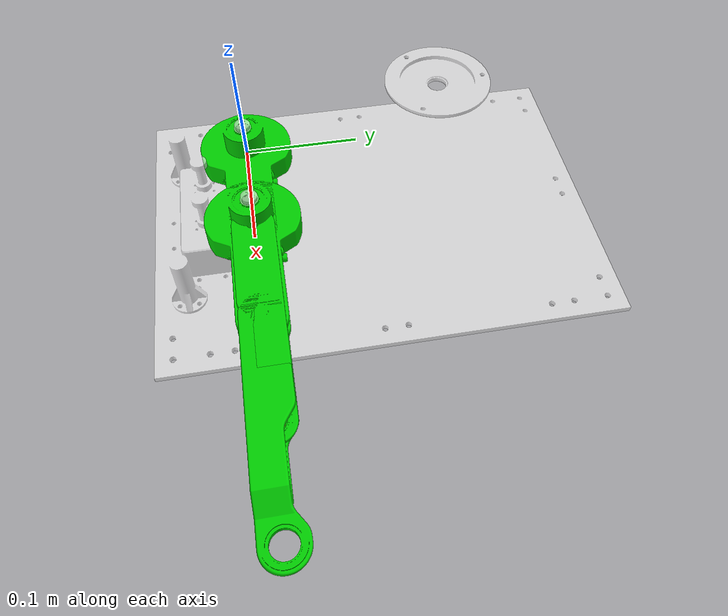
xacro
<?xml version="1.0"?>

<robot xmlns:xacro="http://www.ros.org/wiki/xacro" name="pantograph">

    <!-- Enable setting arguments from the launch file -->
    <xacro:arg name="use_sim" default="false" />
    <xacro:arg name="use_fake_hardware" default="true" />
    <xacro:arg name="command_interface" default="effort" />
    <xacro:arg name="controllers_file" default="iiwa_controllers.yaml" />
    <xacro:arg name="initial_positions_file" default="initial_positions.yaml" />

    <!-- Import urdf file(s) -->
    <xacro:include filename="$(find pantograph_description)/urdf/pantograph.urdf.xacro" />

    <!-- Import pantograph ros2_control description -->
    <xacro:include filename="$(find pantograph_description)/ros2_control/pantograph.r2c_hardware.xacro" />

    <!-- Import pantograph, fixed w.r.t. "world" frame -->
    <link name="world"/>
    <xacro:pantograph parent="world">
        <origin xyz="0 0 0" rpy="0 0 0"/>
    </xacro:pantograph>

    <!-- Setup hardware (ros2 control) -->
    <xacro:panto_r2c_hardware
        name="pantographRobot"
        command_interface="$(arg command_interface)"
        initial_positions_file="$(arg initial_positions_file)"
        use_sim="$(arg use_sim)"
        use_fake_hardware="$(arg use_fake_hardware)"
    />

</robot>

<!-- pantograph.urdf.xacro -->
<robot xmlns:xacro="http://www.ros.org/wiki/xacro">

  <xacro:macro name="pantograph" params="parent *origin">

  <material name="white_alpha">
    <color rgba="${255/255} ${255/255} ${255/255} 0.6"/>
  </material>

  <material name="blue">
    <color rgba="0.0 0.0 0.8 1.0"/>
  </material>

  <material name="green">
    <color rgba="0.0 0.8 0.0 1.0"/>
  </material>

  <material name="orange">
    <color rgba="${255/255} ${108/255} ${10/255} 1.0"/>
  </material>

  <!-- ========== Base link ========== -->

  <link name = "panto_base">
    <visual>
      <geometry>
        <mesh filename="package://pantograph_description/meshes/mesh_base.stl" scale="0.001 0.001 0.001"/>
      </geometry>
      <material name = "white_alpha"/>
      <origin xyz="0 0 0" rpy="0 0 0" />
    </visual>
  </link>

  <joint name="panto_root_joint" type="fixed">
      <xacro:insert_block name="origin" />
      <parent link="${parent}"/>
      <child link="panto_base"/>
  </joint>

  <!-- ==========  Fulcrum =========== -->

  <link name = "panto_link_fulcrum">
    <visual>
      <geometry>
        <mesh filename="package://pantograph_description/meshes/mesh_fulcrum.stl" scale="0.001 0.001 0.001"/>
      </geometry>
      <material name = "white_alpha"/>
      <origin xyz = "0 0 0" rpy = "0 0 0"/>
    </visual>
  </link>

  <joint name = "panto_base_to_fulcrum" type="fixed">
    <parent link = "panto_base"/>
    <child link = "panto_link_fulcrum"/>
    <origin xyz = "0.0425 0.16056 0.09"/>
  </joint>

  <!-- ==========  Left arm (as seen from behind) =========== -->

  <link name = "panto_left_motor">
    <inertial>
      <!-- izz = 69.9 g/cm², see https://www.farnell.com/datasheets/484832.pdf -->
      <mass value="0.1"/>
      <inertia ixx="0.1" ixy="0.0" ixz="0.0" iyy="0.1" iyz="0.0" izz="0.00000699"/>
    </inertial>
  </link>

  <joint name = "panto_a1" type="revolute">
    <parent link = "panto_base"/>
    <child link = "panto_left_motor"/>
    <origin xyz = "0.0 0 0" rpy="0 0 0"/>
    <limit effort="1000.0" lower="-1.57" upper="1.57" velocity="0.5"/>
    <axis xyz = "0 0 1"/>
    <dynamics damping="0.2" friction="0.1" />
  </joint>

  <link name = "panto_left_link1">
    <visual>
      <geometry>
        <mesh filename="package://pantograph_description/meshes/mesh_link_left_1.stl" scale="0.001 0.001 0.001"/>
      </geometry>
      <material name = "green"/>
      <origin xyz = "0 0 0" rpy = "0 0 0"/>
    </visual>
  </link>

  <joint name = "panto_left_motor_to_link1" type="fixed">
    <parent link = "panto_left_motor"/>
    <child link = "panto_left_link1"/>
    <origin xyz = "0 0 0"/>
  </joint>

  <link name = "panto_left_link2">
    <visual>
      <geometry>
        <mesh filename="package://pantograph_description/meshes/mesh_link_left_2.stl" scale="0.001 0.001 0.001"/>
      </geometry>
      <material name = "green"/>
      <origin xyz = "0 0 0" rpy = "0 0 0"/>
    </visual>
  </link>

  <joint name = "panto_a2" type="revolute">
    <parent link = "panto_left_link1"/>
    <child link = "panto_left_link2"/>
    <origin xyz = "0.1 0 0" rpy="0 0 0"/>
    <limit effort="1000.0" lower="-1.57" upper="1.57" velocity="0.5"/>
    <axis xyz = "0 0 1"/>
    <dynamics damping="0.2" friction="0.1" />
  </joint>

  <!-- ==========  Tool link (orange sphere) =========== -->

  <link name = "panto_tool0">
    <visual>
      <geometry>
        <mesh filename="package://pantograph_description/meshes/mesh_tool0.stl" scale="0.001 0.001 0.001"/>
      </geometry>
      <material name = "orange"/>
      <origin xyz = "0 0 0" rpy = "0 0 0"/>
    </visual>
  </link>

  <joint name = "panto_a3" type="revolute">
    <parent link = "panto_left_link2"/>
    <child link = "panto_tool0"/>
    <origin xyz = "0.165 0 0" rpy="0 0 0"/>
    <limit effort="1000.0" lower="-1.57" upper="1.57" velocity="0.5"/>
    <axis xyz = "0 0 1"/>
    <dynamics damping="0.2" friction="0.1" />
  </joint>

  <!-- ==========  Right arm (as seen from behind) =========== -->

  <link name = "panto_right_motor">
    <inertial>
      <!-- izz = 69.9 g/cm², see https://www.farnell.com/datasheets/484832.pdf -->
      <mass value="0.1"/>
      <inertia ixx="0.1" ixy="0.0" ixz="0.0" iyy="0.1" iyz="0.0" izz="0.00000699"/>
    </inertial>
  </link>

  <joint name = "panto_a5" type="revolute">
    <parent link = "panto_base"/>
    <child link = "panto_right_motor"/>
    <origin xyz = "0.085 0 0" rpy="0 0 0"/>
    <limit effort="1000.0" lower="-1.57" upper="1.57" velocity="0.5"/>
    <axis xyz = "0 0 1"/>
    <dynamics damping="0.2" friction="0.1" />
  </joint>

  <link name = "panto_right_link1">
    <visual>
      <geometry>
        <mesh filename="package://pantograph_description/meshes/mesh_link_left_1.stl" scale="0.001 0.001 0.001"/>
      </geometry>
      <material name = "green"/>
      <origin xyz = "0 0 0" rpy = "0 0 0"/>
    </visual>
  </link>

  <joint name = "panto_right_motor_to_link1" type="fixed">
    <parent link = "panto_right_motor"/>
    <child link = "panto_right_link1"/>
    <origin xyz = "0 0 0"/>
  </joint>

  <link name = "panto_right_link2">
    <visual>
      <geometry>
        <mesh filename="package://pantograph_description/meshes/mesh_link_right_2.stl" scale="0.001 0.001 0.001"/>
      </geometry>
      <material name = "green"/>
      <origin xyz = "0 0 0" rpy = "0 0 0"/>
    </visual>
  </link>

  <joint name = "panto_a4" type="revolute">
    <parent link = "panto_right_link1"/>
    <child link = "panto_right_link2"/>
    <origin xyz = "0.1 0 0" rpy="0 0 0"/>
    <limit effort="1000.0" lower="-1.57" upper="1.57" velocity="0.5"/>
    <axis xyz = "0 0 1"/>
    <dynamics damping="0.2" friction="0.1" />
  </joint>

  </xacro:macro>
</robot>
